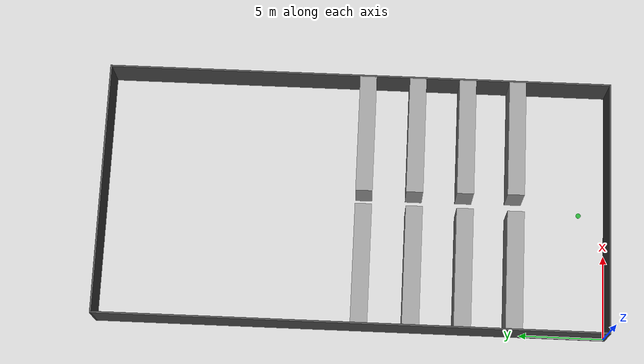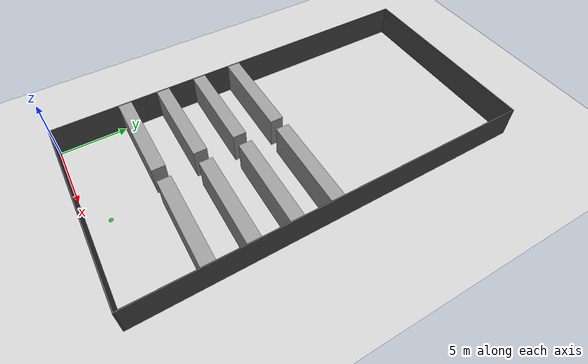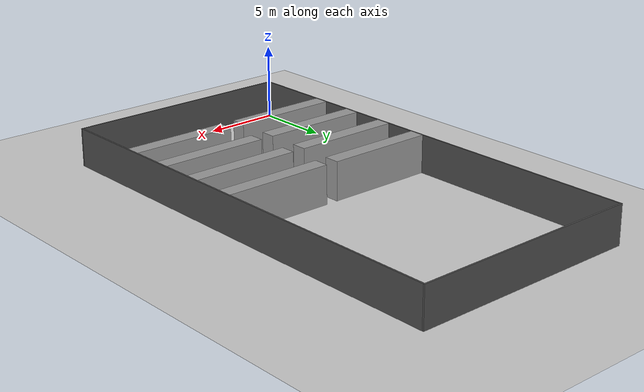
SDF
<?xml version="1.0"?>
<sdf version="1.6">
  <world name="corridor_test">

    <!-- Standard ground plane and lighting -->
    <include><uri>model://ground_plane</uri></include>
    <include><uri>model://sun</uri></include>

    <!-- Physics: 1kHz, real-time -->
    <physics type="ode">
      <max_step_size>0.001</max_step_size>
      <real_time_update_rate>1000</real_time_update_rate>
      <real_time_factor>1.0</real_time_factor>
      <gravity>0 0 -9.81</gravity>
    </physics>

    <!-- ══════════════════════════════════════════════════════
         OUTER ROOM WALLS  (thickness=0.1m, height=2.5m)
    ══════════════════════════════════════════════════════ -->
    <model name="wall_S">
      <static>true</static>
      <pose>7.5000 -0.0500 1.2500 0 0 0</pose>
      <link name="link">
        <collision name="col">
          <geometry><box><size>15.2000 0.1000 2.5000</size></box></geometry>
        </collision>
        <visual name="vis">
          <geometry><box><size>15.2000 0.1000 2.5000</size></box></geometry>
          <material>
            <script>
              <uri>file://media/materials/scripts/gazebo.material</uri>
              <name>Gazebo/DarkGrey</name>
            </script>
          </material>
        </visual>
      </link>
    </model>

    <model name="wall_N">
      <static>true</static>
      <pose>7.5000 30.0500 1.2500 0 0 0</pose>
      <link name="link">
        <collision name="col">
          <geometry><box><size>15.2000 0.1000 2.5000</size></box></geometry>
        </collision>
        <visual name="vis">
          <geometry><box><size>15.2000 0.1000 2.5000</size></box></geometry>
          <material>
            <script>
              <uri>file://media/materials/scripts/gazebo.material</uri>
              <name>Gazebo/DarkGrey</name>
            </script>
          </material>
        </visual>
      </link>
    </model>

    <model name="wall_W">
      <static>true</static>
      <pose>-0.0500 15.0000 1.2500 0 0 0</pose>
      <link name="link">
        <collision name="col">
          <geometry><box><size>0.1000 30.0000 2.5000</size></box></geometry>
        </collision>
        <visual name="vis">
          <geometry><box><size>0.1000 30.0000 2.5000</size></box></geometry>
          <material>
            <script>
              <uri>file://media/materials/scripts/gazebo.material</uri>
              <name>Gazebo/DarkGrey</name>
            </script>
          </material>
        </visual>
      </link>
    </model>

    <model name="wall_E">
      <static>true</static>
      <pose>15.0500 15.0000 1.2500 0 0 0</pose>
      <link name="link">
        <collision name="col">
          <geometry><box><size>0.1000 30.0000 2.5000</size></box></geometry>
        </collision>
        <visual name="vis">
          <geometry><box><size>0.1000 30.0000 2.5000</size></box></geometry>
          <material>
            <script>
              <uri>file://media/materials/scripts/gazebo.material</uri>
              <name>Gazebo/DarkGrey</name>
            </script>
          </material>
        </visual>
      </link>
    </model>

    <model name="corr1_L">
      <static>true</static>
      <pose>3.5000 5.5000 1.2500 0 0 0</pose>
      <link name="link">
        <collision name="col">
          <geometry><box><size>7.0000 1.0000 2.5000</size></box></geometry>
        </collision>
        <visual name="vis">
          <geometry><box><size>7.0000 1.0000 2.5000</size></box></geometry>
          <material>
            <script>
              <uri>file://media/materials/scripts/gazebo.material</uri>
              <name>Gazebo/Grey</name>
            </script>
          </material>
        </visual>
      </link>
    </model>

    <model name="corr1_R">
      <static>true</static>
      <pose>11.5000 5.5000 1.2500 0 0 0</pose>
      <link name="link">
        <collision name="col">
          <geometry><box><size>7.0000 1.0000 2.5000</size></box></geometry>
        </collision>
        <visual name="vis">
          <geometry><box><size>7.0000 1.0000 2.5000</size></box></geometry>
          <material>
            <script>
              <uri>file://media/materials/scripts/gazebo.material</uri>
              <name>Gazebo/Grey</name>
            </script>
          </material>
        </visual>
      </link>
    </model>

    <model name="corr2_L">
      <static>true</static>
      <pose>3.5250 8.5000 1.2500 0 0 0</pose>
      <link name="link">
        <collision name="col">
          <geometry><box><size>7.0500 1.0000 2.5000</size></box></geometry>
        </collision>
        <visual name="vis">
          <geometry><box><size>7.0500 1.0000 2.5000</size></box></geometry>
          <material>
            <script>
              <uri>file://media/materials/scripts/gazebo.material</uri>
              <name>Gazebo/Grey</name>
            </script>
          </material>
        </visual>
      </link>
    </model>

    <model name="corr2_R">
      <static>true</static>
      <pose>11.4750 8.5000 1.2500 0 0 0</pose>
      <link name="link">
        <collision name="col">
          <geometry><box><size>7.0500 1.0000 2.5000</size></box></geometry>
        </collision>
        <visual name="vis">
          <geometry><box><size>7.0500 1.0000 2.5000</size></box></geometry>
          <material>
            <script>
              <uri>file://media/materials/scripts/gazebo.material</uri>
              <name>Gazebo/Grey</name>
            </script>
          </material>
        </visual>
      </link>
    </model>

    <model name="corr3_L">
      <static>true</static>
      <pose>3.5375 11.5000 1.2500 0 0 0</pose>
      <link name="link">
        <collision name="col">
          <geometry><box><size>7.0750 1.0000 2.5000</size></box></geometry>
        </collision>
        <visual name="vis">
          <geometry><box><size>7.0750 1.0000 2.5000</size></box></geometry>
          <material>
            <script>
              <uri>file://media/materials/scripts/gazebo.material</uri>
              <name>Gazebo/Grey</name>
            </script>
          </material>
        </visual>
      </link>
    </model>

    <model name="corr3_R">
      <static>true</static>
      <pose>11.4625 11.5000 1.2500 0 0 0</pose>
      <link name="link">
        <collision name="col">
          <geometry><box><size>7.0750 1.0000 2.5000</size></box></geometry>
        </collision>
        <visual name="vis">
          <geometry><box><size>7.0750 1.0000 2.5000</size></box></geometry>
          <material>
            <script>
              <uri>file://media/materials/scripts/gazebo.material</uri>
              <name>Gazebo/Grey</name>
            </script>
          </material>
        </visual>
      </link>
    </model>

    <model name="corr4_L">
      <static>true</static>
      <pose>3.5500 14.5000 1.2500 0 0 0</pose>
      <link name="link">
        <collision name="col">
          <geometry><box><size>7.1000 1.0000 2.5000</size></box></geometry>
        </collision>
        <visual name="vis">
          <geometry><box><size>7.1000 1.0000 2.5000</size></box></geometry>
          <material>
            <script>
              <uri>file://media/materials/scripts/gazebo.material</uri>
              <name>Gazebo/Grey</name>
            </script>
          </material>
        </visual>
      </link>
    </model>

    <model name="corr4_R">
      <static>true</static>
      <pose>11.4500 14.5000 1.2500 0 0 0</pose>
      <link name="link">
        <collision name="col">
          <geometry><box><size>7.1000 1.0000 2.5000</size></box></geometry>
        </collision>
        <visual name="vis">
          <geometry><box><size>7.1000 1.0000 2.5000</size></box></geometry>
          <material>
            <script>
              <uri>file://media/materials/scripts/gazebo.material</uri>
              <name>Gazebo/Grey</name>
            </script>
          </material>
        </visual>
      </link>
    </model>

    <!-- Robot spawn point indicator (green disc) -->
    <model name="spawn_marker">
      <static>true</static>
      <pose>7.50 1.50 0.005 0 0 0</pose>
      <link name="link">
        <visual name="vis">
          <geometry><cylinder><radius>0.15</radius><length>0.01</length></cylinder></geometry>
          <material>
            <script>
              <uri>file://media/materials/scripts/gazebo.material</uri>
              <name>Gazebo/Green</name>
            </script>
          </material>
        </visual>
      </link>
    </model>

  </world>
</sdf>
